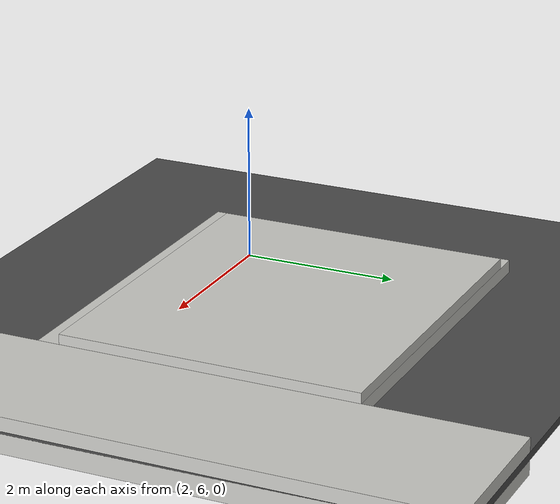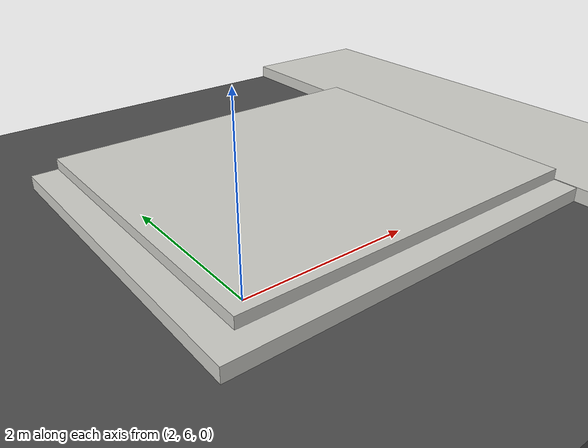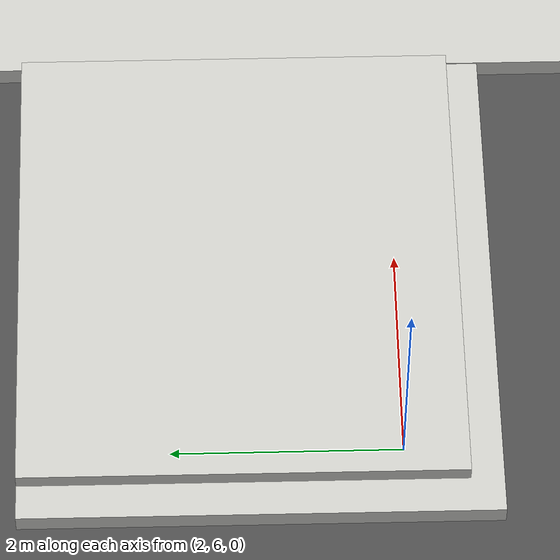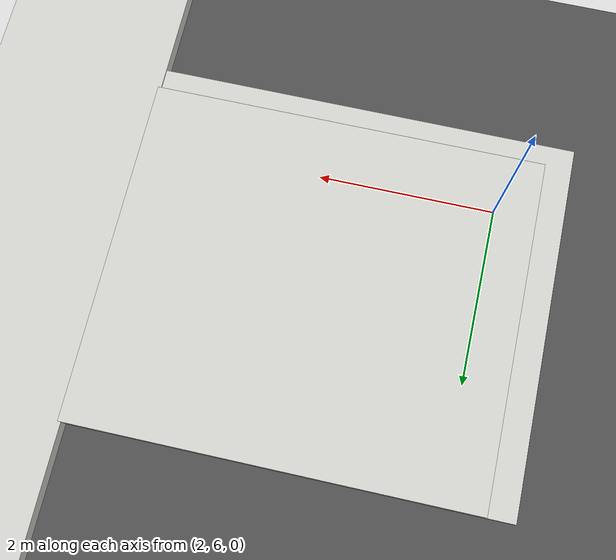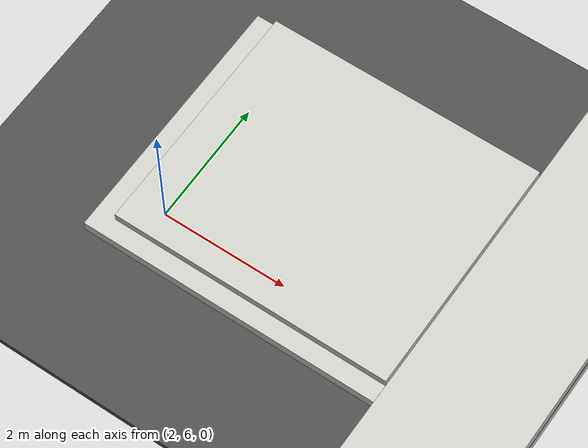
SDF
<sdf version="1.6">
 <world name="default">
  <model name="asphalt_plane">
   <static>1</static>
   <link name="link">
    <collision name="collision"><geometry><box><size>200 200 0.1</size></box></geometry></collision>
    <visual name="visual">
     <cast_shadows>0</cast_shadows>
     <geometry><box><size>200 200 0.1</size></box></geometry>
     <material>
      <script>
       <uri>model://asphalt_plane/materials/scripts</uri>
       <uri>model://asphalt_plane/materials/textures</uri>
       <name>vrc/asphalt</name>
      </script>
     </material>
    </visual>
   </link>
   <pose>0.263713 2.26378 0 0 -0 0</pose>
  </model>
  <model name="add_competition_building_with_stair">
   <link name="link_0">
    <inertial>
     <mass>26.161</mass>
     <inertia><ixx>37.6217</ixx><ixy>0</ixy><ixz>0</ixz><iyy>49.4924</iyy><iyz>0</iyz><izz>86.2665</izz></inertia>
    </inertial>
    <pose>0.807052 -2.01011 0 0 -0 0</pose>
    <visual name="visual">
     <geometry><box><size>4.74422 4.13069 0.440916</size></box></geometry>
     <material>
      <lighting>1</lighting>
      <script><uri>file://media/materials/scripts/gazebo.material</uri><name>Gazebo/CeilingTiled</name></script>
      <shader type="pixel"><normal_map>__default__</normal_map></shader>
      <ambient>1 1 1 1</ambient>
      <diffuse>1 1 1 1</diffuse>
      <specular>0.01 0.01 0.01 1</specular>
      <emissive>0 0 0 1</emissive>
     </material>
    </visual>
    <collision name="collision">
     <geometry><box><size>4.74422 4.13069 0.440916</size></box></geometry>
     <surface>
      <friction>
       <ode><mu>1</mu><mu2>1</mu2><fdir1>0 0 0</fdir1><slip1>0</slip1><slip2>0</slip2></ode>
       <torsional>
        <coefficient>1</coefficient>
        <patch_radius>0</patch_radius>
        <surface_radius>0</surface_radius>
        <use_patch_radius>1</use_patch_radius>
        <ode><slip>0</slip></ode>
       </torsional>
      </friction>
      <bounce><restitution_coefficient>0</restitution_coefficient><threshold>1e+06</threshold></bounce>
      <contact>
       <collide_without_contact>0</collide_without_contact>
       <collide_without_contact_bitmask>1</collide_without_contact_bitmask>
       <collide_bitmask>1</collide_bitmask>
       <ode>
        <soft_cfm>0</soft_cfm>
        <soft_erp>0.2</soft_erp>
        <kp>1e+13</kp>
        <kd>1</kd>
        <max_vel>0.01</max_vel>
        <min_depth>0</min_depth>
       </ode>
       <bullet>
        <split_impulse>1</split_impulse>
        <split_impulse_penetration_threshold>-0.01</split_impulse_penetration_threshold>
        <soft_cfm>0</soft_cfm>
        <soft_erp>0.2</soft_erp>
        <kp>1e+13</kp>
        <kd>1</kd>
       </bullet>
      </contact>
     </surface>
    </collision>
   </link>
   <link name="link_0_clone">
    <inertial>
     <mass>0.497616</mass>
     <inertia>
      <ixx>0.613287</ixx>
      <ixy>0</ixy>
      <ixz>0</ixz>
      <iyy>0.811754</iyy>
      <iyz>0</iyz>
      <izz>1.42331</izz>
     </inertia>
    </inertial>
    <pose>0.966685 -1.86699 0.282136 0 -0 0</pose>
    <visual name="visual">
     <geometry><box><size>4.42206 3.84299 0.144334</size></box></geometry>
     <material>
      <lighting>1</lighting>
      <script><uri>file://media/materials/scripts/gazebo.material</uri><name>Gazebo/CeilingTiled</name></script>
      <shader type="pixel"><normal_map>__default__</normal_map></shader>
      <ambient>1 1 1 1</ambient>
      <diffuse>1 1 1 1</diffuse>
      <specular>0.01 0.01 0.01 1</specular>
      <emissive>0 0 0 1</emissive>
     </material>
    </visual>
    <collision name="collision">
     <geometry><box><size>4.42206 3.84299 0.144334</size></box></geometry>
     <surface>
      <friction>
       <ode><mu>1</mu><mu2>1</mu2><fdir1>0 0 0</fdir1><slip1>0</slip1><slip2>0</slip2></ode>
       <torsional>
        <coefficient>1</coefficient>
        <patch_radius>0</patch_radius>
        <surface_radius>0</surface_radius>
        <use_patch_radius>1</use_patch_radius>
        <ode><slip>0</slip></ode>
       </torsional>
      </friction>
      <bounce><restitution_coefficient>0</restitution_coefficient><threshold>1e+06</threshold></bounce>
      <contact>
       <collide_without_contact>0</collide_without_contact>
       <collide_without_contact_bitmask>1</collide_without_contact_bitmask>
       <collide_bitmask>1</collide_bitmask>
       <ode>
        <soft_cfm>0</soft_cfm>
        <soft_erp>0.2</soft_erp>
        <kp>1e+13</kp>
        <kd>1</kd>
        <max_vel>0.01</max_vel>
        <min_depth>0</min_depth>
       </ode>
       <bullet>
        <split_impulse>1</split_impulse>
        <split_impulse_penetration_threshold>-0.01</split_impulse_penetration_threshold>
        <soft_cfm>0</soft_cfm>
        <soft_erp>0.2</soft_erp>
        <kp>1e+13</kp>
        <kd>1</kd>
       </bullet>
      </contact>
     </surface>
    </collision>
   </link>
   <link name="link_2">
    <inertial>
     <mass>163.316</mass>
     <inertia><ixx>10717.1</ixx><ixy>0</ixy><ixz>0</ixz><iyy>2242.65</iyy><iyz>0</iyz><izz>12954.1</izz></inertia>
    </inertial>
    <pose>9.59679 -1.25874 0 0 -0 0</pose>
    <visual name="visual">
     <geometry><box><size>12.8288 28.0581 0.453943</size></box></geometry>
     <material>
      <lighting>1</lighting>
      <script><uri>file://media/materials/scripts/gazebo.material</uri><name>Gazebo/CeilingTiled</name></script>
      <shader type="pixel"><normal_map>__default__</normal_map></shader>
      <ambient>1 1 1 1</ambient>
      <diffuse>1 1 1 1</diffuse>
      <specular>0.01 0.01 0.01 1</specular>
      <emissive>0 0 0 1</emissive>
     </material>
    </visual>
    <collision name="collision">
     <geometry><box><size>12.8288 28.0581 0.453943</size></box></geometry>
     <surface>
      <friction>
       <ode><mu>1</mu><mu2>1</mu2><fdir1>0 0 0</fdir1><slip1>0</slip1><slip2>0</slip2></ode>
       <torsional>
        <coefficient>1</coefficient>
        <patch_radius>0</patch_radius>
        <surface_radius>0</surface_radius>
        <use_patch_radius>1</use_patch_radius>
        <ode><slip>0</slip></ode>
       </torsional>
      </friction>
      <bounce><restitution_coefficient>0</restitution_coefficient><threshold>1e+06</threshold></bounce>
      <contact>
       <collide_without_contact>0</collide_without_contact>
       <collide_without_contact_bitmask>1</collide_without_contact_bitmask>
       <collide_bitmask>1</collide_bitmask>
       <ode>
        <soft_cfm>0</soft_cfm>
        <soft_erp>0.2</soft_erp>
        <kp>1e+13</kp>
        <kd>1</kd>
        <max_vel>0.01</max_vel>
        <min_depth>0</min_depth>
       </ode>
       <bullet>
        <split_impulse>1</split_impulse>
        <split_impulse_penetration_threshold>-0.01</split_impulse_penetration_threshold>
        <soft_cfm>0</soft_cfm>
        <soft_erp>0.2</soft_erp>
        <kp>1e+13</kp>
        <kd>1</kd>
       </bullet>
      </contact>
     </surface>
    </collision>
   </link>
   <static>1</static>
   <pose>2.81593 9.24612 0 0 -0 0</pose>
  </model>
 </world>
</sdf>
